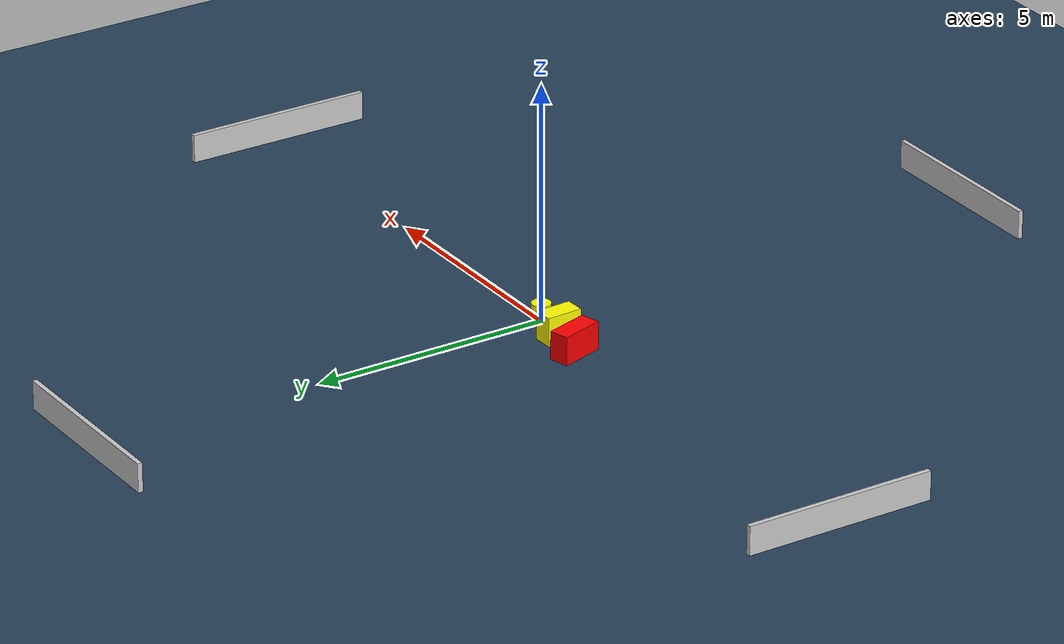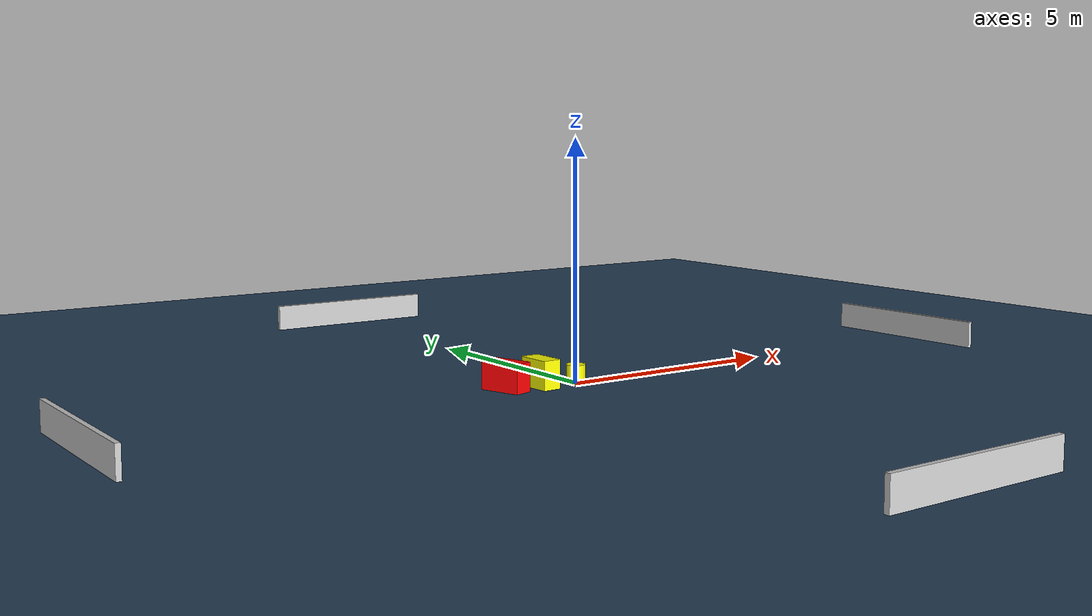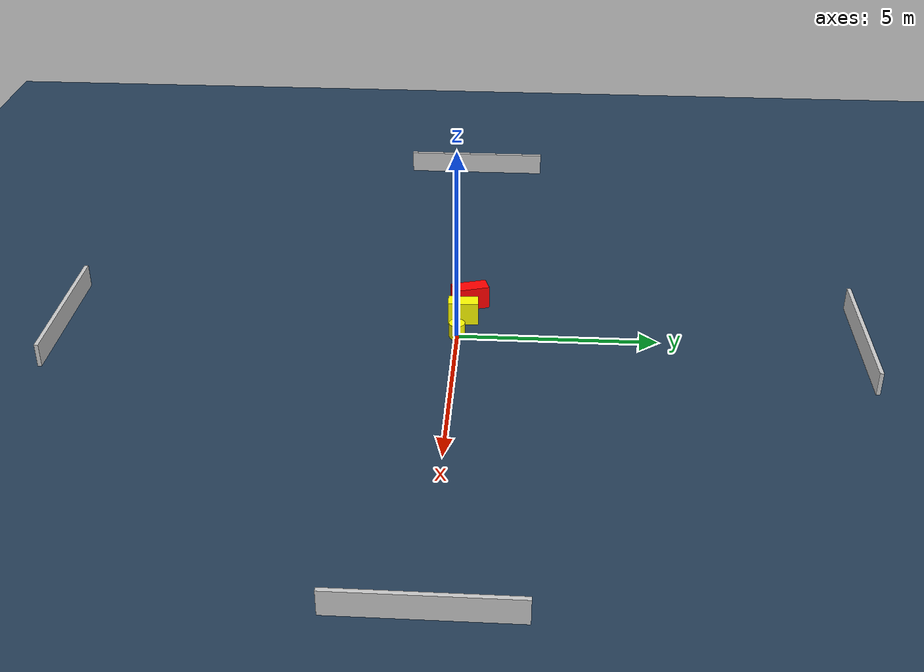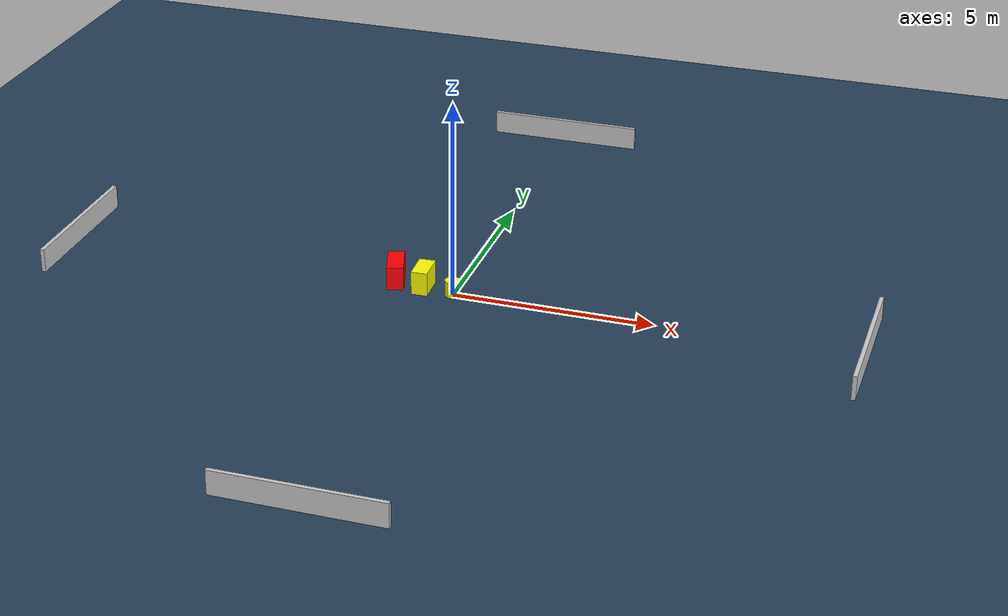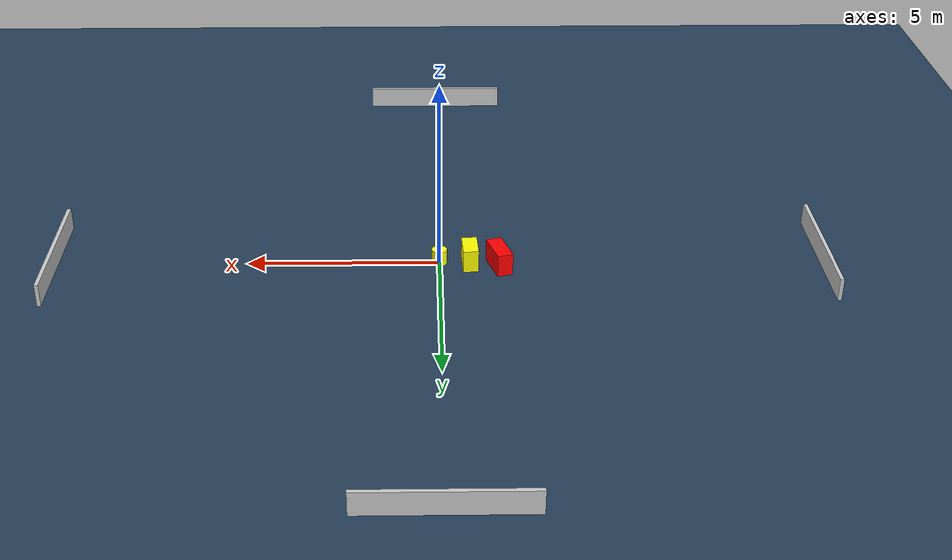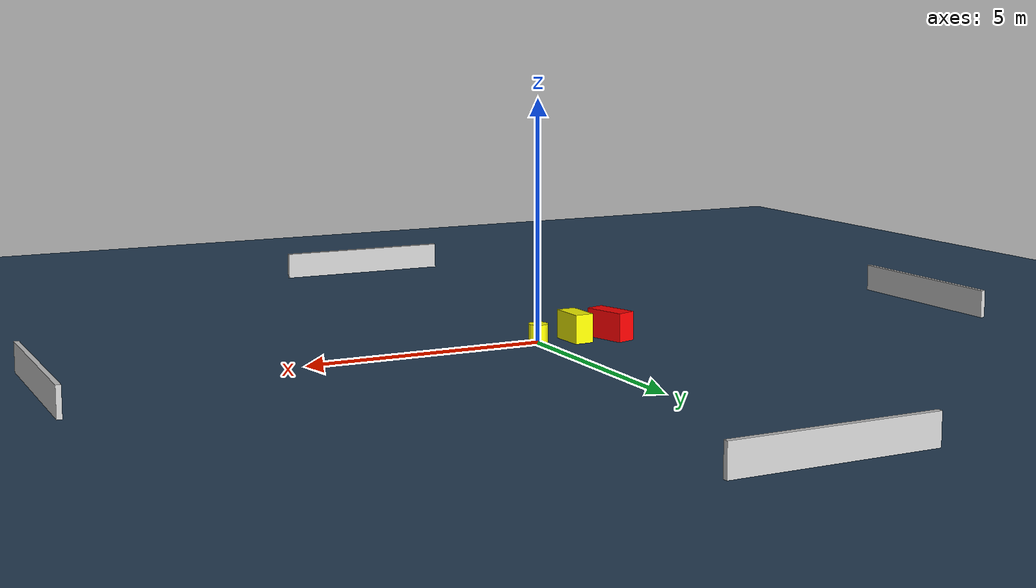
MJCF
<?xml version="1.0" ?>
<mujoco model="generated_environment">
  <option timestep="0.01" integrator="RK4" cone="elliptic"/>
  <default>
    <geom density="1"/>
  </default>
  <asset>
    <texture builtin="gradient" height="3072" name="skybox" rgb1="0.3 0.5 0.7" rgb2="0 0 0" type="skybox" width="512"/>
    <texture builtin="checker" height="300" name="groundplane" rgb1="0.2 0.3 0.4" rgb2="0.1 0.2 0.3" type="2d" width="300"/>
    <material name="groundplane" reflectance="0.2" texrepeat="5 5" texture="groundplane"/>
  </asset>
  <worldbody>
    <light dir="0 0 -1" directional="true" pos="0 0 1.5"/>
    <geom condim="3" friction="0.5 0.005 0.001" material="groundplane" name="floor" pos="0 0 0" size="0 0 0.05" type="plane"/>
    <body name="walls">
      <geom name="wall_1" condim="4" pos="-10.0 0.0 0.3" rgba="0.800000011920929 0.800000011920929 0.800000011920929 1.0" size="0.05 2.0 0.3" type="box"/>
      <geom name="wall_2" condim="4" pos="10.0 0.0 0.3" rgba="0.800000011920929 0.800000011920929 0.800000011920929 1.0" size="0.05 2.0 0.3" type="box"/>
      <geom name="wall_3" condim="4" pos="0.0 -10.0 0.3" rgba="0.800000011920929 0.800000011920929 0.800000011920929 1.0" size="2.0 0.05 0.3" type="box"/>
      <geom name="wall_4" condim="4" pos="0.0 10.0 0.3" rgba="0.800000011920929 0.800000011920929 0.800000011920929 1.0" size="2.0 0.05 0.3" type="box"/>
    </body>
    <body name="robot">
      <joint name="joint_x" type="slide" pos="0 0 0" axis="1 0 0"/>
      <joint name="joint_y" type="slide" pos="0 0 0" axis="0 1 0"/>
      <geom name="robot" type="cylinder" pos="0.0 0.0 0.2" size="0.2 0.2 0.0" mass="5.0" friction="1.0 0.005 0.0001" condim="4" rgba="1.0 1.0 0.0 1.0"/>
    </body>
    <body name="obstacle_1_movable">
      <geom name="obstacle_1_movable" condim="4" pos="-0.7928754843672852 0.11145537906940765 0.3" euler="0 0 182.27562107879243" friction="0.0 0.005 0.001" rgba="1.0 1.0 0.0 1.0" size="0.20102061457541026 0.3801841519034709 0.3" type="box" mass="0.1"/>
      <joint type="free"/>
    </body>
    <body name="obstacle_2_static">
      <geom name="obstacle_2_static" condim="4" pos="-1.5514257893050452 0.24481891545396534 0.3" euler="0 0 286.9119052523956" friction="0.0 0.005 0.001" rgba="1.0 0.0 0.0 1.0" size="0.46169092580435767 0.2063625541228532 0.3" type="box"/>
    </body>
  </worldbody>
  <actuator>
    <motor name="actuator_x" joint="joint_x" gear="1" ctrlrange="-1 1"/>
    <motor name="actuator_y" joint="joint_y" gear="1" ctrlrange="-1 1"/>
  </actuator>
</mujoco>
